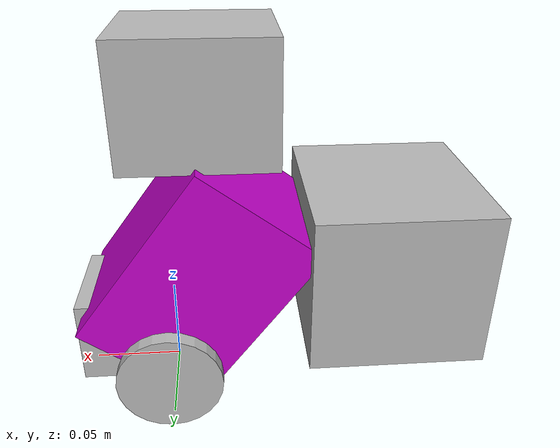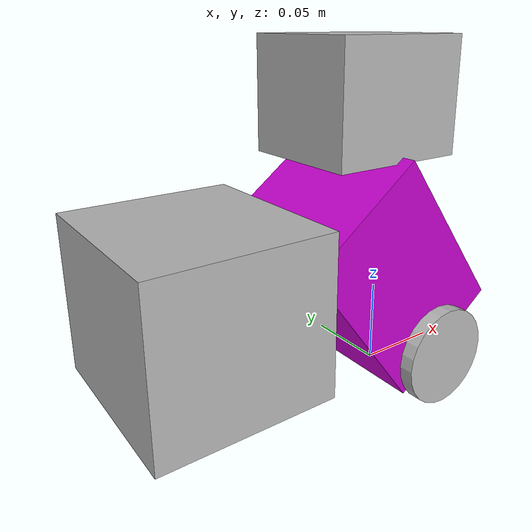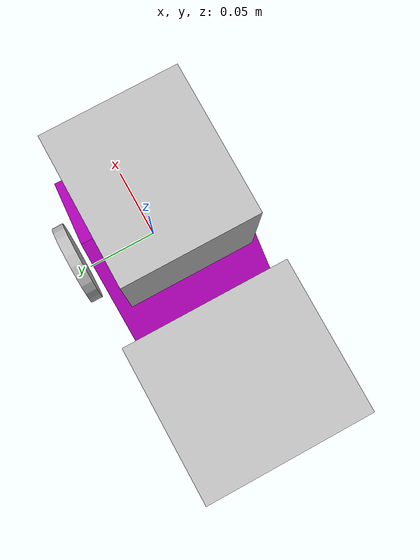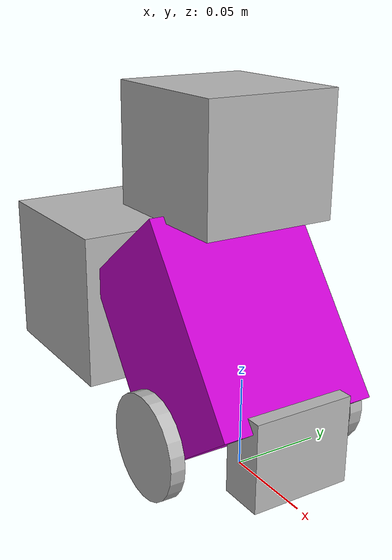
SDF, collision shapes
<?xml version='1.0'?>
<sdf version="1.6">
  <model name="etrobo_spike">
    <pose>0.0 0.0 0.0 0.0 0.0 0.0</pose>

    <link name="base_footprint"/>

    <joint name="base_joint" type="fixed">
      <parent>base_footprint</parent>
      <child>body_link</child>
      <pose>0.0 0.0 0.083853 0 0 0</pose>
    </joint>

    <link name="body_link">
      <inertial>
        <pose>-0.0168 0 0.0704 0 0.927295177 0</pose>
        <mass>0.434</mass>
        <inertia>
          <ixx>0.0006538</ixx>
          <ixy>0.0</ixy>
          <ixz>0.0001067</ixz>
          <iyy>0.0006851</iyy>
          <iyz>0.0</iyz>
          <izz>0.0005915</izz>
        </inertia>
      </inertial>

      <collision name="base_collision">
        <pose>-0.0168 0 0.0704 0 0.927295177 0</pose>
        <geometry>
          <box>
            <size>0.112 0.088 0.08</size>
          </box>
        </geometry>
      </collision>

      <visual name="base_visual">
        <pose>0 0 0 0 0 0</pose>
        <geometry>
          <mesh>
            <uri>model://etrobo_spike/meshes/HackSPi.dae</uri>
          </mesh>
        </geometry>
        <material>
          <ambient>0.777 0.0088 0.802 1</ambient>
          <diffuse>0.777 0.0088 0.802 1</diffuse>
        </material>
      </visual>

    </link>

    <joint name="wheel_left_joint" type="revolute">
      <parent>body_link</parent>
      <child>wheel_left_link</child>
      <pose>0 0.056 0.028 0 0 0</pose>
      <axis>
        <xyz>0 1 0</xyz>
        <limit>
          <velocity>19.4</velocity>    <!-- rad/s -->
          <effort>0.18</effort>        <!-- = max_wheel_torque  (N·m) -->
        </limit>
      </axis>
    </joint>

    <link name="wheel_left_link">
      <inertial>
        <pose>0 0.056 0.028 1.5707 0 0</pose>
        <mass>0.014</mass>
        <inertia>
          <ixx>2.82e-6</ixx>
          <ixy>0.0</ixy>
          <ixz>0.0</ixz>
          <iyy>2.82e-6</iyy>
          <iyz>0.0</iyz>
          <izz>5.49e-6</izz>
        </inertia>
      </inertial>

      <collision name="collision">
        <pose>0 0.056 0.028 1.5707 0 0</pose>
        <geometry>
          <cylinder>
            <radius>0.028</radius>
            <length>0.008</length>
          </cylinder>
        </geometry>
        <surface>
          <friction>
            <ode>
              <mu>0.5</mu>
              <mu2>0.5</mu2>
            </ode>
          </friction>
          <contact>
            <ode>
              <kp>100000</kp>
              <kd>1</kd>
            </ode>
          </contact>
        </surface>
      </collision>

    </link>

    <joint name="wheel_right_joint" type="revolute">
      <parent>body_link</parent>
      <child>wheel_right_link</child>
      <pose>0 -0.056 0.028 0 0 0</pose>
      <axis>
        <xyz>0 1 0</xyz>
        <limit>
          <velocity>19.4</velocity>    <!-- rad/s -->
          <effort>0.18</effort>        <!-- = max_wheel_torque  (N·m) -->
        </limit>
      </axis>
    </joint>

    <link name="wheel_right_link">
      <inertial>
        <pose>0 -0.056 0.028 1.5707 0 0</pose>
        <mass>0.1</mass>
        <inertia>
          <ixx>2.82e-6</ixx>
          <ixy>0.0</ixy>
          <ixz>0.0</ixz>
          <iyy>2.82e-6</iyy>
          <iyz>0.0</iyz>
          <izz>5.49e-6</izz>
        </inertia>
      </inertial>

      <collision name="collision">
        <pose>0 -0.056 0.028 1.5707 0 0</pose>
        <geometry>
          <cylinder>
            <radius>0.028</radius>
            <length>0.008</length>
          </cylinder>
        </geometry>
        <surface>
          <friction>
            <ode>
              <mu>0.5</mu>
              <mu2>0.5</mu2>
            </ode>
          </friction>
          <contact>
            <ode>
              <kp>100000</kp>
              <kd>1</kd>
            </ode>
          </contact>
        </surface>
      </collision>

    </link>

    <joint name="container_joint" type="fixed">
      <parent>body_link</parent>
      <child>container_link</child>
      <pose>0 0 0 0 0 0</pose>
    </joint>

    <link name="container_link">
      <inertial>
        <pose>-0.1224 0 0.0712 0 0 0</pose>
        <mass>0.354</mass>
        <inertia>
          <ixx>0.000548</ixx>
          <ixy>0.0</ixy>
          <ixz>0.0</ixz>
          <iyy>0.000500</iyy>
          <iyz>0.0</iyz>
          <izz>0.000591</izz>
        </inertia>
      </inertial>

      <collision name="container_collision">
        <pose>-0.1224 0 0.0712 0 0 0</pose>
        <geometry>
          <box>
            <size>0.096 0.104 0.088</size>
          </box>
        </geometry>
      </collision>

    </link>

    <joint name="caster_back_joint" type="fixed">
      <parent>container_link</parent>
      <child>caster_back_link</child>
      <pose>-0.021348 0 -0.055228</pose>
    </joint>

    <link name="caster_back_link">
      <inertial>
        <pose>-0.1424 0 0.0152 0 0 0</pose>
        <mass>0.0096</mass>
        <inertia>
          <ixx>5.53e-07</ixx>
          <ixy>0.0</ixy>
          <ixz>0.0</ixz>
          <iyy>5.53e-07</iyy>
          <iyz>0.0</iyz>
          <izz>5.53e-07</izz>
        </inertia>
      </inertial>

      <collision name="collision">
        <pose>-0.1424 0 0.0152 0 0 0</pose>
        <geometry>
          <sphere>
            <radius>0.012</radius>
          </sphere>
        </geometry>
        <surface>
          <friction>
            <ode>
              <mu>0.01</mu>
              <mu2>0.01</mu2>
            </ode>
          </friction>
          <contact>
            <ode>
              <kp>100000</kp>
              <kd>1</kd>
            </ode>
          </contact>
        </surface>
      </collision>

    </link>

    <joint name="head_joint" type="fixed">
      <parent>body_link</parent>
      <child>head_link</child>
      <pose>0 0 0 0 0 0</pose>
    </joint>

    <link name="head_link">
      <inertial>
        <pose>-0.020 0 0.168 0 0 0</pose>
        <mass>0.124</mass>
        <inertia>
          <ixx>9.59e-05</ixx>
          <ixy>0.0</ixy>
          <ixz>0.0</ixz>
          <iyy>1.08e-04</iyy>
          <iyz>0.0</iyz>
          <izz>1.20e-04</izz>
        </inertia>
      </inertial>

      <collision name="head_collision">
        <pose>-0.020 0 0.168 0 0 0</pose>
        <geometry>
          <box>
            <size>0.080 0.072 0.064</size>
          </box>
        </geometry>
      </collision>

      <!-- New RGB camera on top of body_link -->
      <sensor name="camera_top" type="camera">
        <pose>-0.020 0 0.2 0 0.34906585 0</pose>
        <always_on>1</always_on>
        <visualize>false</visualize>
        <update_rate>15</update_rate>
        <camera>
          <horizontal_fov>1.0471975512</horizontal_fov><!-- 60 degrees -->
          <image>
            <width>640</width>
            <height>480</height>
            <format>R8G8B8</format>
          </image>
          <clip>
            <near>0.1</near>
            <far>10</far>
          </clip>
        </camera>
        <plugin name="gazebo_ros_camera" filename="libgazebo_ros_camera.so">
          <ros>
            <namespace>/camera_top</namespace>
            <remapping>image_raw:=image_raw</remapping>
            <remapping>camera_info:=camera_info</remapping>
          </ros>
          <frame_name>camera_top_link</frame_name>
        </plugin>
      </sensor>
    </link>

    <joint name="arm_joint" type="fixed">
      <parent>body_link</parent>
      <child>arm_link</child>
      <pose>0 0 0 0 0 0</pose>
    </joint>

    <link name="arm_link">
      <inertial>
        <pose>0.040 0 0.032 0 0 0</pose>
        <mass>0.031</mass>
        <inertia>
          <ixx>1.41e-05</ixx>
          <ixy>0.0</ixy>
          <ixz>0.0</ixz>
          <iyy>7.44e-06</iyy>
          <iyz>0.0</iyz>
          <izz>9.59e-06</izz>
        </inertia>
      </inertial>

      <collision name="arm_collision">
        <pose>0.040 0 0.032 0 0 0</pose>
        <geometry>
          <box>
            <size>0.024  0.056 0.048</size>
          </box>
        </geometry>
      </collision>

      <!-- Color sensor (downward facing, front) -->
      <sensor name="color_sensor" type="camera">
        <pose>0.040 0 0.008 0 1.570796327 0</pose>
        <always_on>1</always_on>
        <visualize>false</visualize>
        <update_rate>100</update_rate>
        <camera>
          <horizontal_fov>0.01</horizontal_fov>
          <image>
            <width>16</width>
            <height>16</height>
            <format>R8G8B8</format>
          </image>
          <clip>
            <near>0.004</near>
            <far>0.012</far>
          </clip>
        </camera>
        <plugin name="gazebo_ros_color_sensor" filename="libgazebo_ros_color_sensor.so">
          <ros>
            <namespace>/color_sensor</namespace>
            <remapping>color:=color</remapping>
          </ros>
        </plugin>
      </sensor>
    </link>

    <!-- IMU sensor -->
    <link name="imu_link">
      <inertial>
        <pose>0 0 0.1 0 0 0</pose>
        <mass>0.001</mass>
        <inertia>
          <ixx>1e-6</ixx>
          <ixy>0.0</ixy>
          <ixz>0.0</ixz>
          <iyy>1e-6</iyy>
          <iyz>0.0</iyz>
          <izz>1e-6</izz>
        </inertia>
      </inertial>

      <sensor name="imu" type="imu">
        <pose>-0.0168 0 0.1104 0 0.927295177 0</pose>
        <always_on>1</always_on>
        <visualize>true</visualize>
        <update_rate>100</update_rate>
        <imu>
          <angular_velocity>
            <x>
              <noise type="gaussian">
                <mean>0.0</mean>
                <stddev>1.22e-4</stddev>
              </noise>
            </x>
            <y>
              <noise type="gaussian">
                <mean>0.0</mean>
                <stddev>1.22e-4</stddev>
              </noise>
            </y>
            <z>
              <noise type="gaussian">
                <mean>0.0</mean>
                <stddev>1.22e-4</stddev>
              </noise>
            </z>
          </angular_velocity>
          <linear_acceleration>
            <x>
              <noise type="gaussian">
                <mean>0.0</mean>
                <stddev>8.83e-4</stddev>
              </noise>
            </x>
            <y>
              <noise type="gaussian">
                <mean>0.0</mean>
                <stddev>8.83e-4</stddev>
              </noise>
            </y>
            <z>
              <noise type="gaussian">
                <mean>0.0</mean>
                <stddev>8.83e-4</stddev>
              </noise>
            </z>
          </linear_acceleration>
        </imu>
        <plugin name="gazebo_ros_imu" filename="libgazebo_ros_imu_sensor.so">
          <ros>
            <namespace>/imu</namespace>
            <remapping>~/out:=data</remapping>
          </ros>
          <frame_name>imu_link</frame_name>
          <angular_velocity_covariance>1.49e-8</angular_velocity_covariance>
          <linear_acceleration_covariance>7.80e-7</linear_acceleration_covariance>
        </plugin>
      </sensor>
    </link>

    <joint name="imu_joint" type="fixed">
      <parent>body_link</parent>
      <child>imu_link</child>
      <pose>0 0 0 0 0 0</pose>
    </joint>

    <plugin name="differential_drive_controller" filename="libgazebo_ros_diff_drive.so">
      <update_rate>100</update_rate>
      <left_joint>wheel_left_joint</left_joint>
      <right_joint>wheel_right_joint</right_joint>
      <wheel_separation>0.112</wheel_separation>
      <wheel_diameter>0.056</wheel_diameter>
      <max_wheel_torque>0.18</max_wheel_torque>
      <max_wheel_acceleration>30</max_wheel_acceleration>
      <publish_odom>true</publish_odom>
      <publish_odom_tf>true</publish_odom_tf>
      <publish_wheel_tf>false</publish_wheel_tf>
      <command_topic>cmd_vel</command_topic>
      <odometry_topic>odom</odometry_topic>
      <odometry_frame>odom</odometry_frame>
      <robot_base_frame>base_footprint</robot_base_frame>
    </plugin>

    <plugin name="turtlebot3_joint_state" filename="libgazebo_ros_joint_state_publisher.so">
      <ros>
        <remapping>~/out:=joint_states</remapping>
      </ros>
      <update_rate>30</update_rate>
      <joint_name>wheel_left_joint</joint_name>
      <joint_name>wheel_right_joint</joint_name>
    </plugin>
  </model>
</sdf>
